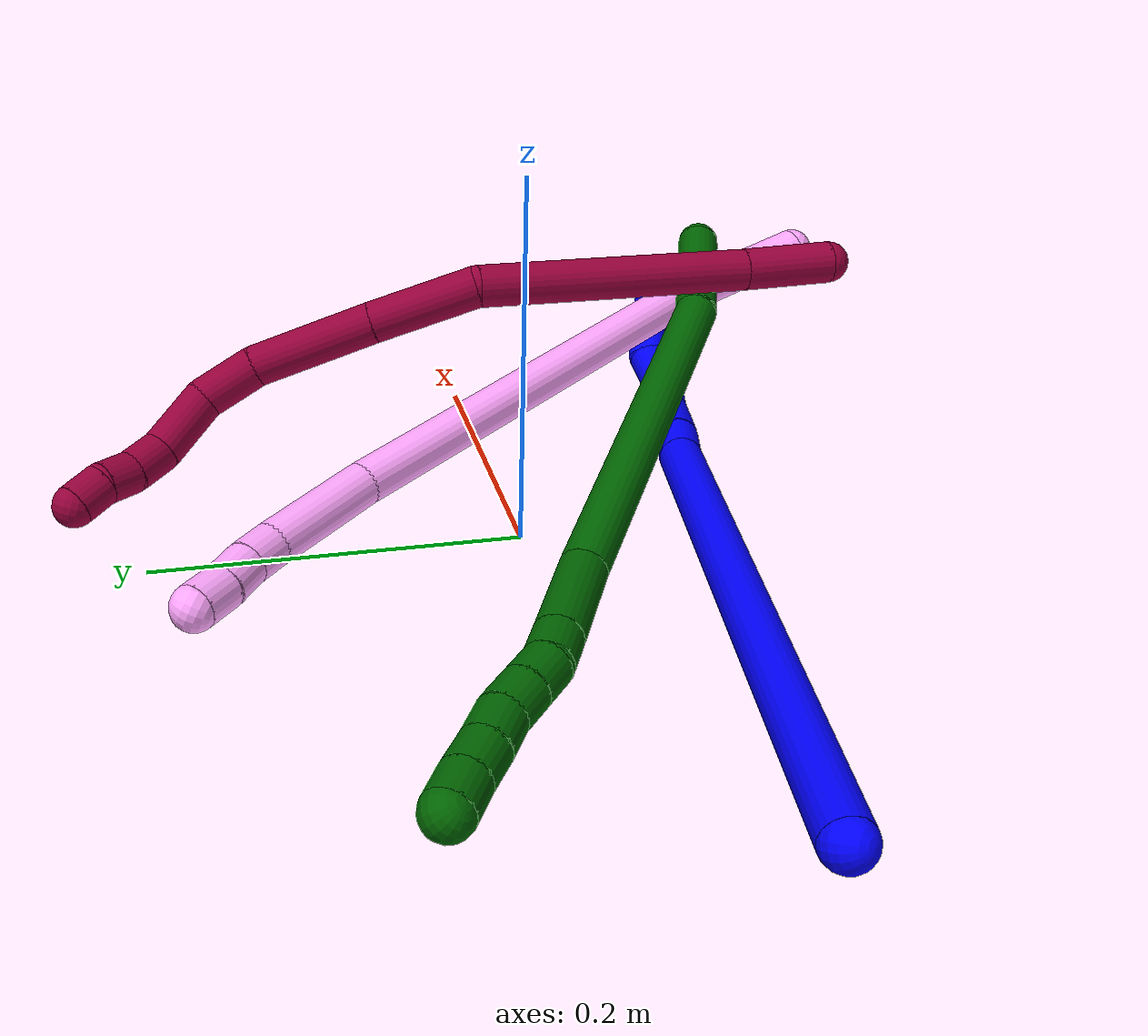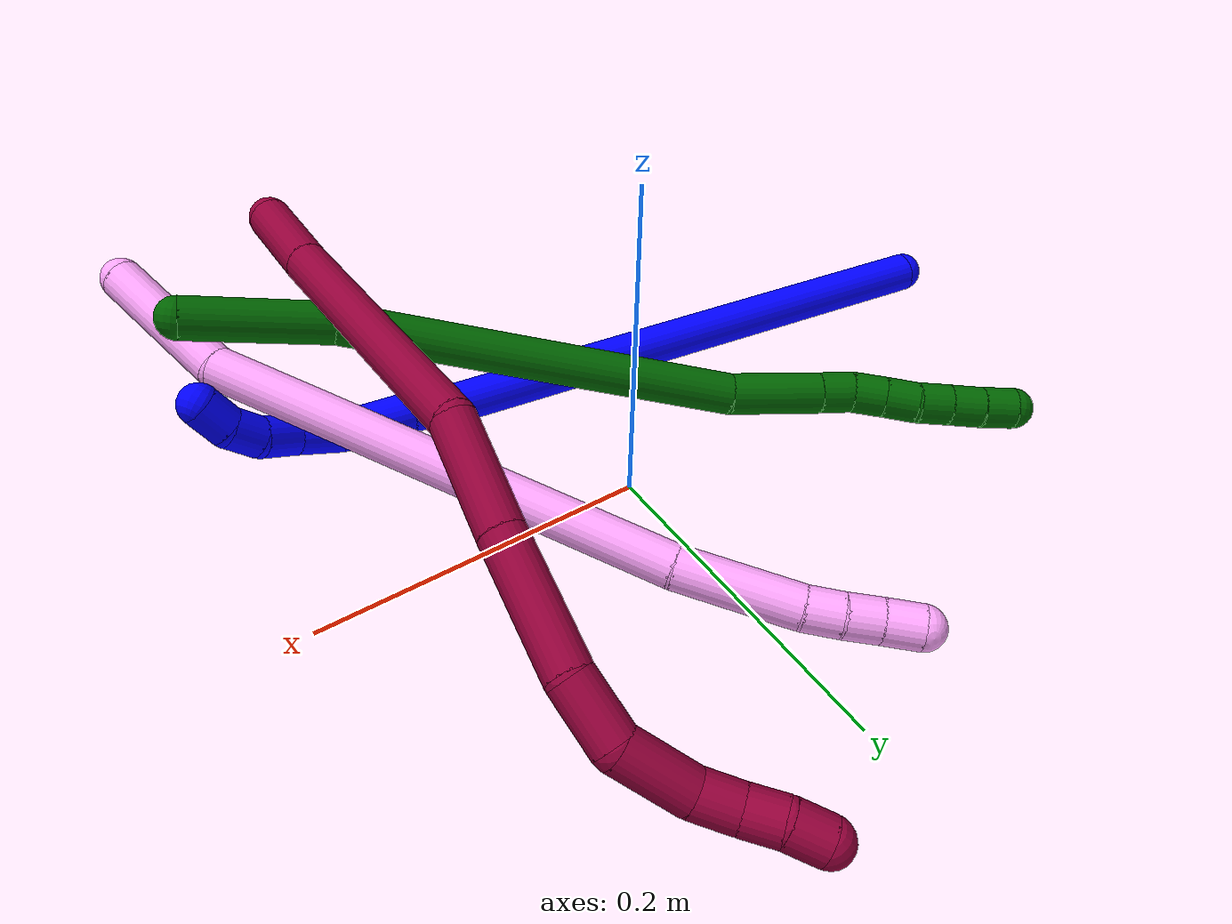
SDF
<sdf version="1.7">
 <world name="default">
  <model name="1">
   <static>0</static>
   <link name="1">
    <collision name="collision-cylinder-e_1_1_4">
     <pose>0.119617 -0.007287 -0.118999 3.08044 0.787053 2.99451</pose>
     <geometry><cylinder><radius>0.0125</radius><length>0.337768</length></cylinder></geometry>
     <surface>
      <friction><ode><mu>1.16</mu><mu2>1.16</mu2><slip1>0</slip1><slip2>0</slip2></ode></friction>
      <contact><ode><kp>1e+06</kp><kd>1</kd><max_vel>0</max_vel><min_depth>0.001</min_depth></ode></contact>
     </surface>
    </collision>
    <visual name="visual-cylinder-e_1_1_4">
     <pose>0.119617 -0.007287 -0.118999 3.08044 0.787053 2.99451</pose>
     <geometry><cylinder><radius>0.0125</radius><length>0.337768</length></cylinder></geometry>
     <material><ambient>0 0 1 1</ambient></material>
    </visual>
    <collision name="collision-cylinder-e_2_4_5">
     <pose>0.248944 -0.015117 -0.245702 3.0712 0.89888 2.99587</pose>
     <geometry><cylinder><radius>0.0125</radius><length>0.024815</length></cylinder></geometry>
     <surface>
      <friction><ode><mu>1.16</mu><mu2>1.16</mu2><slip1>0</slip1><slip2>0</slip2></ode></friction>
      <contact><ode><kp>1e+06</kp><kd>1</kd><max_vel>0</max_vel><min_depth>0.001</min_depth></ode></contact>
     </surface>
    </collision>
    <visual name="visual-cylinder-e_2_4_5">
     <pose>0.248944 -0.015117 -0.245702 3.0712 0.89888 2.99587</pose>
     <geometry><cylinder><radius>0.0125</radius><length>0.024815</length></cylinder></geometry>
     <material><ambient>0 0 1 1</ambient></material>
    </visual>
    <collision name="collision-cylinder-e_3_5_6">
     <pose>0.274275 -0.017603 -0.268377 3.01249 0.802459 2.83919</pose>
     <geometry><cylinder><radius>0.0125</radius><length>0.043447</length></cylinder></geometry>
     <surface>
      <friction><ode><mu>1.16</mu><mu2>1.16</mu2><slip1>0</slip1><slip2>0</slip2></ode></friction>
      <contact><ode><kp>1e+06</kp><kd>1</kd><max_vel>0</max_vel><min_depth>0.001</min_depth></ode></contact>
     </surface>
    </collision>
    <visual name="visual-cylinder-e_3_5_6">
     <pose>0.274275 -0.017603 -0.268377 3.01249 0.802459 2.83919</pose>
     <geometry><cylinder><radius>0.0125</radius><length>0.043447</length></cylinder></geometry>
     <material><ambient>0 0 1 1</ambient></material>
    </visual>
    <collision name="collision-cylinder-e_4_6_7">
     <pose>0.301347 -0.017378 -0.291222 -2.87275 0.951244 -2.62806</pose>
     <geometry><cylinder><radius>0.0125</radius><length>0.02813</length></cylinder></geometry>
     <surface>
      <friction><ode><mu>1.16</mu><mu2>1.16</mu2><slip1>0</slip1><slip2>0</slip2></ode></friction>
      <contact><ode><kp>1e+06</kp><kd>1</kd><max_vel>0</max_vel><min_depth>0.001</min_depth></ode></contact>
     </surface>
    </collision>
    <visual name="visual-cylinder-e_4_6_7">
     <pose>0.301347 -0.017378 -0.291222 -2.87275 0.951244 -2.62806</pose>
     <geometry><cylinder><radius>0.0125</radius><length>0.02813</length></cylinder></geometry>
     <material><ambient>0 0 1 1</ambient></material>
    </visual>
    <collision name="collision-cylinder-e_5_7_8">
     <pose>0.320934 -0.009474 -0.30644 -2.47866 0.717814 -1.65692</pose>
     <geometry><cylinder><radius>0.0125</radius><length>0.024741</length></cylinder></geometry>
     <surface>
      <friction><ode><mu>1.16</mu><mu2>1.16</mu2><slip1>0</slip1><slip2>0</slip2></ode></friction>
      <contact><ode><kp>1e+06</kp><kd>1</kd><max_vel>0</max_vel><min_depth>0.001</min_depth></ode></contact>
     </surface>
    </collision>
    <visual name="visual-cylinder-e_5_7_8">
     <pose>0.320934 -0.009474 -0.30644 -2.47866 0.717814 -1.65692</pose>
     <geometry><cylinder><radius>0.0125</radius><length>0.024741</length></cylinder></geometry>
     <material><ambient>0 0 1 1</ambient></material>
    </visual>
    <collision name="collision-cylinder-e_6_8_9">
     <pose>0.33757 0.001112 -0.316525 -2.08498 0.990472 -1.4934</pose>
     <geometry><cylinder><radius>0.0125</radius><length>0.020326</length></cylinder></geometry>
     <surface>
      <friction><ode><mu>1.16</mu><mu2>1.16</mu2><slip1>0</slip1><slip2>0</slip2></ode></friction>
      <contact><ode><kp>1e+06</kp><kd>1</kd><max_vel>0</max_vel><min_depth>0.001</min_depth></ode></contact>
     </surface>
    </collision>
    <visual name="visual-cylinder-e_6_8_9">
     <pose>0.33757 0.001112 -0.316525 -2.08498 0.990472 -1.4934</pose>
     <geometry><cylinder><radius>0.0125</radius><length>0.020326</length></cylinder></geometry>
     <material><ambient>0 0 1 1</ambient></material>
    </visual>
    <collision name="collision-cylinder-e_7_9_2">
     <pose>0.355215 0.010812 -0.318416 -1.39741 1.07712 -0.930368</pose>
     <geometry><cylinder><radius>0.0125</radius><length>0.020773</length></cylinder></geometry>
     <surface>
      <friction><ode><mu>1.16</mu><mu2>1.16</mu2><slip1>0</slip1><slip2>0</slip2></ode></friction>
      <contact><ode><kp>1e+06</kp><kd>1</kd><max_vel>0</max_vel><min_depth>0.001</min_depth></ode></contact>
     </surface>
    </collision>
    <visual name="visual-cylinder-e_7_9_2">
     <pose>0.355215 0.010812 -0.318416 -1.39741 1.07712 -0.930368</pose>
     <geometry><cylinder><radius>0.0125</radius><length>0.020773</length></cylinder></geometry>
     <material><ambient>0 0 1 1</ambient></material>
    </visual>
    <collision name="collision-sphere-2">
     <pose>0.364361 0.01566 -0.317567 0 -0 0</pose>
     <geometry><sphere><radius>0.0125</radius></sphere></geometry>
     <surface>
      <friction><ode><mu>1.16</mu><mu2>1.16</mu2><slip1>0</slip1><slip2>0</slip2></ode></friction>
      <contact><ode><kp>1e+06</kp><kd>1</kd><max_vel>0</max_vel><min_depth>0.001</min_depth></ode></contact>
     </surface>
    </collision>
    <visual name="visual-sphere-2">
     <pose>0.364361 0.01566 -0.317567 0 -0 0</pose>
     <geometry><sphere><radius>0.0125</radius></sphere></geometry>
     <material><ambient>0 0 1 1</ambient></material>
    </visual>
    <collision name="collision-sphere-9">
     <pose>0.346069 0.005964 -0.319265 0 -0 0</pose>
     <geometry><sphere><radius>0.0125</radius></sphere></geometry>
     <surface>
      <friction><ode><mu>1.16</mu><mu2>1.16</mu2><slip1>0</slip1><slip2>0</slip2></ode></friction>
      <contact><ode><kp>1e+06</kp><kd>1</kd><max_vel>0</max_vel><min_depth>0.001</min_depth></ode></contact>
     </surface>
    </collision>
    <visual name="visual-sphere-9">
     <pose>0.346069 0.005964 -0.319265 0 -0 0</pose>
     <geometry><sphere><radius>0.0125</radius></sphere></geometry>
     <material><ambient>0 0 1 1</ambient></material>
    </visual>
    <collision name="collision-sphere-4">
     <pose>0.239233 -0.014573 -0.237997 0 -0 0</pose>
     <geometry><sphere><radius>0.0125</radius></sphere></geometry>
     <surface>
      <friction><ode><mu>1.16</mu><mu2>1.16</mu2><slip1>0</slip1><slip2>0</slip2></ode></friction>
      <contact><ode><kp>1e+06</kp><kd>1</kd><max_vel>0</max_vel><min_depth>0.001</min_depth></ode></contact>
     </surface>
    </collision>
    <visual name="visual-sphere-4">
     <pose>0.239233 -0.014573 -0.237997 0 -0 0</pose>
     <geometry><sphere><radius>0.0125</radius></sphere></geometry>
     <material><ambient>0 0 1 1</ambient></material>
    </visual>
    <collision name="collision-sphere-1">
     <geometry><sphere><radius>0.0125</radius></sphere></geometry>
     <surface>
      <friction><ode><mu>1.16</mu><mu2>1.16</mu2><slip1>0</slip1><slip2>0</slip2></ode></friction>
      <contact><ode><kp>1e+06</kp><kd>1</kd><max_vel>0</max_vel><min_depth>0.001</min_depth></ode></contact>
     </surface>
    </collision>
    <visual name="visual-sphere-1">
     <geometry><sphere><radius>0.0125</radius></sphere></geometry>
     <material><ambient>0 0 1 1</ambient></material>
    </visual>
    <collision name="collision-sphere-8">
     <pose>0.329071 -0.003739 -0.313784 0 -0 0</pose>
     <geometry><sphere><radius>0.0125</radius></sphere></geometry>
     <surface>
      <friction><ode><mu>1.16</mu><mu2>1.16</mu2><slip1>0</slip1><slip2>0</slip2></ode></friction>
      <contact><ode><kp>1e+06</kp><kd>1</kd><max_vel>0</max_vel><min_depth>0.001</min_depth></ode></contact>
     </surface>
    </collision>
    <visual name="visual-sphere-8">
     <pose>0.329071 -0.003739 -0.313784 0 -0 0</pose>
     <geometry><sphere><radius>0.0125</radius></sphere></geometry>
     <material><ambient>0 0 1 1</ambient></material>
    </visual>
    <collision name="collision-sphere-5">
     <pose>0.258654 -0.01566 -0.253406 0 -0 0</pose>
     <geometry><sphere><radius>0.0125</radius></sphere></geometry>
     <surface>
      <friction><ode><mu>1.16</mu><mu2>1.16</mu2><slip1>0</slip1><slip2>0</slip2></ode></friction>
      <contact><ode><kp>1e+06</kp><kd>1</kd><max_vel>0</max_vel><min_depth>0.001</min_depth></ode></contact>
     </surface>
    </collision>
    <visual name="visual-sphere-5">
     <pose>0.258654 -0.01566 -0.253406 0 -0 0</pose>
     <geometry><sphere><radius>0.0125</radius></sphere></geometry>
     <material><ambient>0 0 1 1</ambient></material>
    </visual>
    <collision name="collision-sphere-6">
     <pose>0.289896 -0.019547 -0.283348 0 -0 0</pose>
     <geometry><sphere><radius>0.0125</radius></sphere></geometry>
     <surface>
      <friction><ode><mu>1.16</mu><mu2>1.16</mu2><slip1>0</slip1><slip2>0</slip2></ode></friction>
      <contact><ode><kp>1e+06</kp><kd>1</kd><max_vel>0</max_vel><min_depth>0.001</min_depth></ode></contact>
     </surface>
    </collision>
    <visual name="visual-sphere-6">
     <pose>0.289896 -0.019547 -0.283348 0 -0 0</pose>
     <geometry><sphere><radius>0.0125</radius></sphere></geometry>
     <material><ambient>0 0 1 1</ambient></material>
    </visual>
    <collision name="collision-sphere-7">
     <pose>0.312797 -0.015208 -0.299095 0 -0 0</pose>
     <geometry><sphere><radius>0.0125</radius></sphere></geometry>
     <surface>
      <friction><ode><mu>1.16</mu><mu2>1.16</mu2><slip1>0</slip1><slip2>0</slip2></ode></friction>
      <contact><ode><kp>1e+06</kp><kd>1</kd><max_vel>0</max_vel><min_depth>0.001</min_depth></ode></contact>
     </surface>
    </collision>
    <visual name="visual-sphere-7">
     <pose>0.312797 -0.015208 -0.299095 0 -0 0</pose>
     <geometry><sphere><radius>0.0125</radius></sphere></geometry>
     <material><ambient>0 0 1 1</ambient></material>
    </visual>
    <inertial>
     <pose>0.178308 -0.008154 -0.173546 0 -0 0</pose>
     <mass>0.5</mass>
     <inertia>
      <ixx>-0.0019</ixx>
      <ixy>0</ixy>
      <ixz>0</ixz>
      <iyy>0.003554</iyy>
      <iyz>0</iyz>
      <izz>-0.002186</izz>
     </inertia>
    </inertial>
   </link>
   <pose>-0.276237 -0.062437 0.013307 1.13841 -0.434693 -0.812801</pose>
  </model>
  <model name="4">
   <static>0</static>
   <link name="4">
    <collision name="collision-cylinder-e_1_1_4">
     <pose>-0.022975 0.025152 -0.027713 -2.40461 -0.550573 1.26313</pose>
     <geometry><cylinder><radius>0.0125</radius><length>0.087829</length></cylinder></geometry>
     <surface>
      <friction><ode><mu>1.16</mu><mu2>1.16</mu2><slip1>0</slip1><slip2>0</slip2></ode></friction>
      <contact><ode><kp>1e+06</kp><kd>1</kd><max_vel>0</max_vel><min_depth>0.001</min_depth></ode></contact>
     </surface>
    </collision>
    <visual name="visual-cylinder-e_1_1_4">
     <pose>-0.022975 0.025152 -0.027713 -2.40461 -0.550573 1.26313</pose>
     <geometry><cylinder><radius>0.0125</radius><length>0.087829</length></cylinder></geometry>
     <material><ambient>1 0.65098 0.996078 1</ambient></material>
    </visual>
    <collision name="collision-cylinder-e_2_4_5">
     <pose>-0.096768 0.162897 -0.123077 -2.11184 -0.369143 0.637459</pose>
     <geometry><cylinder><radius>0.0125</radius><length>0.281683</length></cylinder></geometry>
     <surface>
      <friction><ode><mu>1.16</mu><mu2>1.16</mu2><slip1>0</slip1><slip2>0</slip2></ode></friction>
      <contact><ode><kp>1e+06</kp><kd>1</kd><max_vel>0</max_vel><min_depth>0.001</min_depth></ode></contact>
     </surface>
    </collision>
    <visual name="visual-cylinder-e_2_4_5">
     <pose>-0.096768 0.162897 -0.123077 -2.11184 -0.369143 0.637459</pose>
     <geometry><cylinder><radius>0.0125</radius><length>0.281683</length></cylinder></geometry>
     <material><ambient>1 0.65098 0.996078 1</ambient></material>
    </visual>
    <collision name="collision-cylinder-e_3_5_6">
     <pose>-0.157984 0.30517 -0.20462 -2.00856 -0.307262 0.477613</pose>
     <geometry><cylinder><radius>0.0125</radius><length>0.06876</length></cylinder></geometry>
     <surface>
      <friction><ode><mu>1.16</mu><mu2>1.16</mu2><slip1>0</slip1><slip2>0</slip2></ode></friction>
      <contact><ode><kp>1e+06</kp><kd>1</kd><max_vel>0</max_vel><min_depth>0.001</min_depth></ode></contact>
     </surface>
    </collision>
    <visual name="visual-cylinder-e_3_5_6">
     <pose>-0.157984 0.30517 -0.20462 -2.00856 -0.307262 0.477613</pose>
     <geometry><cylinder><radius>0.0125</radius><length>0.06876</length></cylinder></geometry>
     <material><ambient>1 0.65098 0.996078 1</ambient></material>
    </visual>
    <collision name="collision-cylinder-e_4_6_7">
     <pose>-0.170565 0.344238 -0.221869 -1.91427 -0.215483 0.304729</pose>
     <geometry><cylinder><radius>0.0125</radius><length>0.020413</length></cylinder></geometry>
     <surface>
      <friction><ode><mu>1.16</mu><mu2>1.16</mu2><slip1>0</slip1><slip2>0</slip2></ode></friction>
      <contact><ode><kp>1e+06</kp><kd>1</kd><max_vel>0</max_vel><min_depth>0.001</min_depth></ode></contact>
     </surface>
    </collision>
    <visual name="visual-cylinder-e_4_6_7">
     <pose>-0.170565 0.344238 -0.221869 -1.91427 -0.215483 0.304729</pose>
     <geometry><cylinder><radius>0.0125</radius><length>0.020413</length></cylinder></geometry>
     <material><ambient>1 0.65098 0.996078 1</ambient></material>
    </visual>
    <collision name="collision-cylinder-e_5_7_8">
     <pose>-0.174953 0.363149 -0.227424 -1.7976 -0.221975 0.278374</pose>
     <geometry><cylinder><radius>0.0125</radius><length>0.020038</length></cylinder></geometry>
     <surface>
      <friction><ode><mu>1.16</mu><mu2>1.16</mu2><slip1>0</slip1><slip2>0</slip2></ode></friction>
      <contact><ode><kp>1e+06</kp><kd>1</kd><max_vel>0</max_vel><min_depth>0.001</min_depth></ode></contact>
     </surface>
    </collision>
    <visual name="visual-cylinder-e_5_7_8">
     <pose>-0.174953 0.363149 -0.227424 -1.7976 -0.221975 0.278374</pose>
     <geometry><cylinder><radius>0.0125</radius><length>0.020038</length></cylinder></geometry>
     <material><ambient>1 0.65098 0.996078 1</ambient></material>
    </visual>
    <collision name="collision-cylinder-e_6_8_2">
     <pose>-0.179144 0.382531 -0.23309 -1.90904 -0.187709 0.264244</pose>
     <geometry><cylinder><radius>0.0125</radius><length>0.021277</length></cylinder></geometry>
     <surface>
      <friction><ode><mu>1.16</mu><mu2>1.16</mu2><slip1>0</slip1><slip2>0</slip2></ode></friction>
      <contact><ode><kp>1e+06</kp><kd>1</kd><max_vel>0</max_vel><min_depth>0.001</min_depth></ode></contact>
     </surface>
    </collision>
    <visual name="visual-cylinder-e_6_8_2">
     <pose>-0.179144 0.382531 -0.23309 -1.90904 -0.187709 0.264244</pose>
     <geometry><cylinder><radius>0.0125</radius><length>0.021277</length></cylinder></geometry>
     <material><ambient>1 0.65098 0.996078 1</ambient></material>
    </visual>
    <collision name="collision-sphere-2">
     <pose>-0.181129 0.39239 -0.236558 0 -0 0</pose>
     <geometry><sphere><radius>0.0125</radius></sphere></geometry>
     <surface>
      <friction><ode><mu>1.16</mu><mu2>1.16</mu2><slip1>0</slip1><slip2>0</slip2></ode></friction>
      <contact><ode><kp>1e+06</kp><kd>1</kd><max_vel>0</max_vel><min_depth>0.001</min_depth></ode></contact>
     </surface>
    </collision>
    <visual name="visual-sphere-2">
     <pose>-0.181129 0.39239 -0.236558 0 -0 0</pose>
     <geometry><sphere><radius>0.0125</radius></sphere></geometry>
     <material><ambient>1 0.65098 0.996078 1</ambient></material>
    </visual>
    <collision name="collision-sphere-4">
     <pose>-0.04595 0.050303 -0.055426 0 -0 0</pose>
     <geometry><sphere><radius>0.0125</radius></sphere></geometry>
     <surface>
      <friction><ode><mu>1.16</mu><mu2>1.16</mu2><slip1>0</slip1><slip2>0</slip2></ode></friction>
      <contact><ode><kp>1e+06</kp><kd>1</kd><max_vel>0</max_vel><min_depth>0.001</min_depth></ode></contact>
     </surface>
    </collision>
    <visual name="visual-sphere-4">
     <pose>-0.04595 0.050303 -0.055426 0 -0 0</pose>
     <geometry><sphere><radius>0.0125</radius></sphere></geometry>
     <material><ambient>1 0.65098 0.996078 1</ambient></material>
    </visual>
    <collision name="collision-sphere-1">
     <geometry><sphere><radius>0.0125</radius></sphere></geometry>
     <surface>
      <friction><ode><mu>1.16</mu><mu2>1.16</mu2><slip1>0</slip1><slip2>0</slip2></ode></friction>
      <contact><ode><kp>1e+06</kp><kd>1</kd><max_vel>0</max_vel><min_depth>0.001</min_depth></ode></contact>
     </surface>
    </collision>
    <visual name="visual-sphere-1">
     <geometry><sphere><radius>0.0125</radius></sphere></geometry>
     <material><ambient>1 0.65098 0.996078 1</ambient></material>
    </visual>
    <collision name="collision-sphere-8">
     <pose>-0.177159 0.372671 -0.229622 0 -0 0</pose>
     <geometry><sphere><radius>0.0125</radius></sphere></geometry>
     <surface>
      <friction><ode><mu>1.16</mu><mu2>1.16</mu2><slip1>0</slip1><slip2>0</slip2></ode></friction>
      <contact><ode><kp>1e+06</kp><kd>1</kd><max_vel>0</max_vel><min_depth>0.001</min_depth></ode></contact>
     </surface>
    </collision>
    <visual name="visual-sphere-8">
     <pose>-0.177159 0.372671 -0.229622 0 -0 0</pose>
     <geometry><sphere><radius>0.0125</radius></sphere></geometry>
     <material><ambient>1 0.65098 0.996078 1</ambient></material>
    </visual>
    <collision name="collision-sphere-5">
     <pose>-0.147586 0.27549 -0.190728 0 -0 0</pose>
     <geometry><sphere><radius>0.0125</radius></sphere></geometry>
     <surface>
      <friction><ode><mu>1.16</mu><mu2>1.16</mu2><slip1>0</slip1><slip2>0</slip2></ode></friction>
      <contact><ode><kp>1e+06</kp><kd>1</kd><max_vel>0</max_vel><min_depth>0.001</min_depth></ode></contact>
     </surface>
    </collision>
    <visual name="visual-sphere-5">
     <pose>-0.147586 0.27549 -0.190728 0 -0 0</pose>
     <geometry><sphere><radius>0.0125</radius></sphere></geometry>
     <material><ambient>1 0.65098 0.996078 1</ambient></material>
    </visual>
    <collision name="collision-sphere-6">
     <pose>-0.168383 0.33485 -0.218511 0 -0 0</pose>
     <geometry><sphere><radius>0.0125</radius></sphere></geometry>
     <surface>
      <friction><ode><mu>1.16</mu><mu2>1.16</mu2><slip1>0</slip1><slip2>0</slip2></ode></friction>
      <contact><ode><kp>1e+06</kp><kd>1</kd><max_vel>0</max_vel><min_depth>0.001</min_depth></ode></contact>
     </surface>
    </collision>
    <visual name="visual-sphere-6">
     <pose>-0.168383 0.33485 -0.218511 0 -0 0</pose>
     <geometry><sphere><radius>0.0125</radius></sphere></geometry>
     <material><ambient>1 0.65098 0.996078 1</ambient></material>
    </visual>
    <collision name="collision-sphere-7">
     <pose>-0.172747 0.353626 -0.225227 0 -0 0</pose>
     <geometry><sphere><radius>0.0125</radius></sphere></geometry>
     <surface>
      <friction><ode><mu>1.16</mu><mu2>1.16</mu2><slip1>0</slip1><slip2>0</slip2></ode></friction>
      <contact><ode><kp>1e+06</kp><kd>1</kd><max_vel>0</max_vel><min_depth>0.001</min_depth></ode></contact>
     </surface>
    </collision>
    <visual name="visual-sphere-7">
     <pose>-0.172747 0.353626 -0.225227 0 -0 0</pose>
     <geometry><sphere><radius>0.0125</radius></sphere></geometry>
     <material><ambient>1 0.65098 0.996078 1</ambient></material>
    </visual>
    <inertial>
     <pose>-0.101876 0.183041 -0.130436 0 -0 0</pose>
     <mass>0.5</mass>
     <inertia>
      <ixx>0.002538</ixx>
      <ixy>0</ixy>
      <ixz>0</ixz>
      <iyy>0.000701</iyy>
      <iyz>0</iyz>
      <izz>-0.000863</izz>
     </inertia>
    </inertial>
   </link>
   <pose>0.204373 -0.233102 0.088555 -3.12497 -1.16654 -1.94787</pose>
  </model>
  <model name="6">
   <static>0</static>
   <link name="6">
    <collision name="collision-cylinder-e_1_1_4">
     <pose>-0.03994 0.015176 0.00584 -1.20342 -1.18416 0.865287</pose>
     <geometry><cylinder><radius>0.0125</radius><length>0.086246</length></cylinder></geometry>
     <surface>
      <friction><ode><mu>1.16</mu><mu2>1.16</mu2><slip1>0</slip1><slip2>0</slip2></ode></friction>
      <contact><ode><kp>1e+06</kp><kd>1</kd><max_vel>0</max_vel><min_depth>0.001</min_depth></ode></contact>
     </surface>
    </collision>
    <visual name="visual-cylinder-e_1_1_4">
     <pose>-0.03994 0.015176 0.00584 -1.20342 -1.18416 0.865287</pose>
     <geometry><cylinder><radius>0.0125</radius><length>0.086246</length></cylinder></geometry>
     <material><ambient>0 0.392157 0.003922 1</ambient></material>
    </visual>
    <collision name="collision-cylinder-e_2_4_5">
     <pose>-0.18286 0.088893 0.009388 -1.60994 -1.05355 1.0879</pose>
     <geometry><cylinder><radius>0.0125</radius><length>0.23696</length></cylinder></geometry>
     <surface>
      <friction><ode><mu>1.16</mu><mu2>1.16</mu2><slip1>0</slip1><slip2>0</slip2></ode></friction>
      <contact><ode><kp>1e+06</kp><kd>1</kd><max_vel>0</max_vel><min_depth>0.001</min_depth></ode></contact>
     </surface>
    </collision>
    <visual name="visual-cylinder-e_2_4_5">
     <pose>-0.18286 0.088893 0.009388 -1.60994 -1.05355 1.0879</pose>
     <geometry><cylinder><radius>0.0125</radius><length>0.23696</length></cylinder></geometry>
     <material><ambient>0 0.392157 0.003922 1</ambient></material>
    </visual>
    <collision name="collision-cylinder-e_3_5_6">
     <pose>-0.309278 0.161954 0.01164 -1.2674 -0.995041 0.759387</pose>
     <geometry><cylinder><radius>0.0125</radius><length>0.055884</length></cylinder></geometry>
     <surface>
      <friction><ode><mu>1.16</mu><mu2>1.16</mu2><slip1>0</slip1><slip2>0</slip2></ode></friction>
      <contact><ode><kp>1e+06</kp><kd>1</kd><max_vel>0</max_vel><min_depth>0.001</min_depth></ode></contact>
     </surface>
    </collision>
    <visual name="visual-cylinder-e_3_5_6">
     <pose>-0.309278 0.161954 0.01164 -1.2674 -0.995041 0.759387</pose>
     <geometry><cylinder><radius>0.0125</radius><length>0.055884</length></cylinder></geometry>
     <material><ambient>0 0.392157 0.003922 1</ambient></material>
    </visual>
    <collision name="collision-cylinder-e_4_6_7">
     <pose>-0.341301 0.182003 0.018064 -1.24347 -0.973446 0.724859</pose>
     <geometry><cylinder><radius>0.0125</radius><length>0.020768</length></cylinder></geometry>
     <surface>
      <friction><ode><mu>1.16</mu><mu2>1.16</mu2><slip1>0</slip1><slip2>0</slip2></ode></friction>
      <contact><ode><kp>1e+06</kp><kd>1</kd><max_vel>0</max_vel><min_depth>0.001</min_depth></ode></contact>
     </surface>
    </collision>
    <visual name="visual-cylinder-e_4_6_7">
     <pose>-0.341301 0.182003 0.018064 -1.24347 -0.973446 0.724859</pose>
     <geometry><cylinder><radius>0.0125</radius><length>0.020768</length></cylinder></geometry>
     <material><ambient>0 0.392157 0.003922 1</ambient></material>
    </visual>
    <collision name="collision-cylinder-e_5_7_8">
     <pose>-0.357128 0.194433 0.019831 -1.58673 -0.809505 0.821101</pose>
     <geometry><cylinder><radius>0.0125</radius><length>0.020003</length></cylinder></geometry>
     <surface>
      <friction><ode><mu>1.16</mu><mu2>1.16</mu2><slip1>0</slip1><slip2>0</slip2></ode></friction>
      <contact><ode><kp>1e+06</kp><kd>1</kd><max_vel>0</max_vel><min_depth>0.001</min_depth></ode></contact>
     </surface>
    </collision>
    <visual name="visual-cylinder-e_5_7_8">
     <pose>-0.357128 0.194433 0.019831 -1.58673 -0.809505 0.821101</pose>
     <geometry><cylinder><radius>0.0125</radius><length>0.020003</length></cylinder></geometry>
     <material><ambient>0 0.392157 0.003922 1</ambient></material>
    </visual>
    <collision name="collision-cylinder-e_6_8_9">
     <pose>-0.371648 0.208224 0.019427 -1.61352 -0.812286 0.843764</pose>
     <geometry><cylinder><radius>0.0125</radius><length>0.020059</length></cylinder></geometry>
     <surface>
      <friction><ode><mu>1.16</mu><mu2>1.16</mu2><slip1>0</slip1><slip2>0</slip2></ode></friction>
      <contact><ode><kp>1e+06</kp><kd>1</kd><max_vel>0</max_vel><min_depth>0.001</min_depth></ode></contact>
     </surface>
    </collision>
    <visual name="visual-cylinder-e_6_8_9">
     <pose>-0.371648 0.208224 0.019427 -1.61352 -0.812286 0.843764</pose>
     <geometry><cylinder><radius>0.0125</radius><length>0.020059</length></cylinder></geometry>
     <material><ambient>0 0.392157 0.003922 1</ambient></material>
    </visual>
    <collision name="collision-cylinder-e_7_9_10">
     <pose>-0.387135 0.220837 0.019973 -1.42484 -0.956975 0.842402</pose>
     <geometry><cylinder><radius>0.0125</radius><length>0.020078</length></cylinder></geometry>
     <surface>
      <friction><ode><mu>1.16</mu><mu2>1.16</mu2><slip1>0</slip1><slip2>0</slip2></ode></friction>
      <contact><ode><kp>1e+06</kp><kd>1</kd><max_vel>0</max_vel><min_depth>0.001</min_depth></ode></contact>
     </surface>
    </collision>
    <visual name="visual-cylinder-e_7_9_10">
     <pose>-0.387135 0.220837 0.019973 -1.42484 -0.956975 0.842402</pose>
     <geometry><cylinder><radius>0.0125</radius><length>0.020078</length></cylinder></geometry>
     <material><ambient>0 0.392157 0.003922 1</ambient></material>
    </visual>
    <collision name="collision-cylinder-e_8_10_11">
     <pose>-0.403228 0.232667 0.021519 -1.45599 -0.908551 0.821066</pose>
     <geometry><cylinder><radius>0.0125</radius><length>0.020001</length></cylinder></geometry>
     <surface>
      <friction><ode><mu>1.16</mu><mu2>1.16</mu2><slip1>0</slip1><slip2>0</slip2></ode></friction>
      <contact><ode><kp>1e+06</kp><kd>1</kd><max_vel>0</max_vel><min_depth>0.001</min_depth></ode></contact>
     </surface>
    </collision>
    <visual name="visual-cylinder-e_8_10_11">
     <pose>-0.403228 0.232667 0.021519 -1.45599 -0.908551 0.821066</pose>
     <geometry><cylinder><radius>0.0125</radius><length>0.020001</length></cylinder></geometry>
     <material><ambient>0 0.392157 0.003922 1</ambient></material>
    </visual>
    <collision name="collision-cylinder-e_9_11_2">
     <pose>-0.419186 0.24455 0.023455 -1.36052 -0.939261 0.779244</pose>
     <geometry><cylinder><radius>0.0125</radius><length>0.020001</length></cylinder></geometry>
     <surface>
      <friction><ode><mu>1.16</mu><mu2>1.16</mu2><slip1>0</slip1><slip2>0</slip2></ode></friction>
      <contact><ode><kp>1e+06</kp><kd>1</kd><max_vel>0</max_vel><min_depth>0.001</min_depth></ode></contact>
     </surface>
    </collision>
    <visual name="visual-cylinder-e_9_11_2">
     <pose>-0.419186 0.24455 0.023455 -1.36052 -0.939261 0.779244</pose>
     <geometry><cylinder><radius>0.0125</radius><length>0.020001</length></cylinder></geometry>
     <material><ambient>0 0.392157 0.003922 1</ambient></material>
    </visual>
    <collision name="collision-sphere-2">
     <pose>-0.427258 0.250324 0.024688 0 -0 0</pose>
     <geometry><sphere><radius>0.0125</radius></sphere></geometry>
     <surface>
      <friction><ode><mu>1.16</mu><mu2>1.16</mu2><slip1>0</slip1><slip2>0</slip2></ode></friction>
      <contact><ode><kp>1e+06</kp><kd>1</kd><max_vel>0</max_vel><min_depth>0.001</min_depth></ode></contact>
     </surface>
    </collision>
    <visual name="visual-sphere-2">
     <pose>-0.427258 0.250324 0.024688 0 -0 0</pose>
     <geometry><sphere><radius>0.0125</radius></sphere></geometry>
     <material><ambient>0 0.392157 0.003922 1</ambient></material>
    </visual>
    <collision name="collision-sphere-11">
     <pose>-0.411114 0.238775 0.022223 0 -0 0</pose>
     <geometry><sphere><radius>0.0125</radius></sphere></geometry>
     <surface>
      <friction><ode><mu>1.16</mu><mu2>1.16</mu2><slip1>0</slip1><slip2>0</slip2></ode></friction>
      <contact><ode><kp>1e+06</kp><kd>1</kd><max_vel>0</max_vel><min_depth>0.001</min_depth></ode></contact>
     </surface>
    </collision>
    <visual name="visual-sphere-11">
     <pose>-0.411114 0.238775 0.022223 0 -0 0</pose>
     <geometry><sphere><radius>0.0125</radius></sphere></geometry>
     <material><ambient>0 0.392157 0.003922 1</ambient></material>
    </visual>
    <collision name="collision-sphere-10">
     <pose>-0.395341 0.226558 0.020814 0 -0 0</pose>
     <geometry><sphere><radius>0.0125</radius></sphere></geometry>
     <surface>
      <friction><ode><mu>1.16</mu><mu2>1.16</mu2><slip1>0</slip1><slip2>0</slip2></ode></friction>
      <contact><ode><kp>1e+06</kp><kd>1</kd><max_vel>0</max_vel><min_depth>0.001</min_depth></ode></contact>
     </surface>
    </collision>
    <visual name="visual-sphere-10">
     <pose>-0.395341 0.226558 0.020814 0 -0 0</pose>
     <geometry><sphere><radius>0.0125</radius></sphere></geometry>
     <material><ambient>0 0.392157 0.003922 1</ambient></material>
    </visual>
    <collision name="collision-sphere-9">
     <pose>-0.378929 0.215116 0.019132 0 -0 0</pose>
     <geometry><sphere><radius>0.0125</radius></sphere></geometry>
     <surface>
      <friction><ode><mu>1.16</mu><mu2>1.16</mu2><slip1>0</slip1><slip2>0</slip2></ode></friction>
      <contact><ode><kp>1e+06</kp><kd>1</kd><max_vel>0</max_vel><min_depth>0.001</min_depth></ode></contact>
     </surface>
    </collision>
    <visual name="visual-sphere-9">
     <pose>-0.378929 0.215116 0.019132 0 -0 0</pose>
     <geometry><sphere><radius>0.0125</radius></sphere></geometry>
     <material><ambient>0 0.392157 0.003922 1</ambient></material>
    </visual>
    <collision name="collision-sphere-4">
     <pose>-0.07988 0.030351 0.01168 0 -0 0</pose>
     <geometry><sphere><radius>0.0125</radius></sphere></geometry>
     <surface>
      <friction><ode><mu>1.16</mu><mu2>1.16</mu2><slip1>0</slip1><slip2>0</slip2></ode></friction>
      <contact><ode><kp>1e+06</kp><kd>1</kd><max_vel>0</max_vel><min_depth>0.001</min_depth></ode></contact>
     </surface>
    </collision>
    <visual name="visual-sphere-4">
     <pose>-0.07988 0.030351 0.01168 0 -0 0</pose>
     <geometry><sphere><radius>0.0125</radius></sphere></geometry>
     <material><ambient>0 0.392157 0.003922 1</ambient></material>
    </visual>
    <collision name="collision-sphere-1">
     <geometry><sphere><radius>0.0125</radius></sphere></geometry>
     <surface>
      <friction><ode><mu>1.16</mu><mu2>1.16</mu2><slip1>0</slip1><slip2>0</slip2></ode></friction>
      <contact><ode><kp>1e+06</kp><kd>1</kd><max_vel>0</max_vel><min_depth>0.001</min_depth></ode></contact>
     </surface>
    </collision>
    <visual name="visual-sphere-1">
     <geometry><sphere><radius>0.0125</radius></sphere></geometry>
     <material><ambient>0 0.392157 0.003922 1</ambient></material>
    </visual>
    <collision name="collision-sphere-8">
     <pose>-0.364368 0.201331 0.019721 0 -0 0</pose>
     <geometry><sphere><radius>0.0125</radius></sphere></geometry>
     <surface>
      <friction><ode><mu>1.16</mu><mu2>1.16</mu2><slip1>0</slip1><slip2>0</slip2></ode></friction>
      <contact><ode><kp>1e+06</kp><kd>1</kd><max_vel>0</max_vel><min_depth>0.001</min_depth></ode></contact>
     </surface>
    </collision>
    <visual name="visual-sphere-8">
     <pose>-0.364368 0.201331 0.019721 0 -0 0</pose>
     <geometry><sphere><radius>0.0125</radius></sphere></geometry>
     <material><ambient>0 0.392157 0.003922 1</ambient></material>
    </visual>
    <collision name="collision-sphere-5">
     <pose>-0.285841 0.147436 0.007095 0 -0 0</pose>
     <geometry><sphere><radius>0.0125</radius></sphere></geometry>
     <surface>
      <friction><ode><mu>1.16</mu><mu2>1.16</mu2><slip1>0</slip1><slip2>0</slip2></ode></friction>
      <contact><ode><kp>1e+06</kp><kd>1</kd><max_vel>0</max_vel><min_depth>0.001</min_depth></ode></contact>
     </surface>
    </collision>
    <visual name="visual-sphere-5">
     <pose>-0.285841 0.147436 0.007095 0 -0 0</pose>
     <geometry><sphere><radius>0.0125</radius></sphere></geometry>
     <material><ambient>0 0.392157 0.003922 1</ambient></material>
    </visual>
    <collision name="collision-sphere-6">
     <pose>-0.332716 0.176473 0.016186 0 -0 0</pose>
     <geometry><sphere><radius>0.0125</radius></sphere></geometry>
     <surface>
      <friction><ode><mu>1.16</mu><mu2>1.16</mu2><slip1>0</slip1><slip2>0</slip2></ode></friction>
      <contact><ode><kp>1e+06</kp><kd>1</kd><max_vel>0</max_vel><min_depth>0.001</min_depth></ode></contact>
     </surface>
    </collision>
    <visual name="visual-sphere-6">
     <pose>-0.332716 0.176473 0.016186 0 -0 0</pose>
     <geometry><sphere><radius>0.0125</radius></sphere></geometry>
     <material><ambient>0 0.392157 0.003922 1</ambient></material>
    </visual>
    <collision name="collision-sphere-7">
     <pose>-0.349887 0.187534 0.019941 0 -0 0</pose>
     <geometry><sphere><radius>0.0125</radius></sphere></geometry>
     <surface>
      <friction><ode><mu>1.16</mu><mu2>1.16</mu2><slip1>0</slip1><slip2>0</slip2></ode></friction>
      <contact><ode><kp>1e+06</kp><kd>1</kd><max_vel>0</max_vel><min_depth>0.001</min_depth></ode></contact>
     </surface>
    </collision>
    <visual name="visual-sphere-7">
     <pose>-0.349887 0.187534 0.019941 0 -0 0</pose>
     <geometry><sphere><radius>0.0125</radius></sphere></geometry>
     <material><ambient>0 0.392157 0.003922 1</ambient></material>
    </visual>
    <inertial>
     <pose>-0.219935 0.114497 0.011682 0 -0 0</pose>
     <mass>0.5</mass>
     <inertia>
      <ixx>0.000764</ixx>
      <ixy>0</ixy>
      <ixz>0</ixz>
      <iyy>0.001445</iyy>
      <iyz>0</iyz>
      <izz>0.000461</izz>
     </inertia>
    </inertial>
   </link>
   <pose>0.193132 -0.161964 0.099856 0.5447 -0.533787 -0.096969</pose>
  </model>
  <model name="8">
   <static>0</static>
   <link name="8">
    <collision name="collision-cylinder-e_1_1_4">
     <pose>0.002314 0.025311 0.009394 -1.21541 0.085498 -0.059484</pose>
     <geometry><cylinder><radius>0.0125</radius><length>0.054194</length></cylinder></geometry>
     <surface>
      <friction><ode><mu>1.16</mu><mu2>1.16</mu2><slip1>0</slip1><slip2>0</slip2></ode></friction>
      <contact><ode><kp>1e+06</kp><kd>1</kd><max_vel>0</max_vel><min_depth>0.001</min_depth></ode></contact>
     </surface>
    </collision>
    <visual name="visual-cylinder-e_1_1_4">
     <pose>0.002314 0.025311 0.009394 -1.21541 0.085498 -0.059484</pose>
     <geometry><cylinder><radius>0.0125</radius><length>0.054194</length></cylinder></geometry>
     <material><ambient>0.584314 0 0.227451 1</ambient></material>
    </visual>
    <collision name="collision-cylinder-e_2_4_5">
     <pose>0.014692 0.128462 0.045262 -1.24297 0.121803 -0.087282</pose>
     <geometry><cylinder><radius>0.0125</radius><length>0.165665</length></cylinder></geometry>
     <surface>
      <friction><ode><mu>1.16</mu><mu2>1.16</mu2><slip1>0</slip1><slip2>0</slip2></ode></friction>
      <contact><ode><kp>1e+06</kp><kd>1</kd><max_vel>0</max_vel><min_depth>0.001</min_depth></ode></contact>
     </surface>
    </collision>
    <visual name="visual-cylinder-e_2_4_5">
     <pose>0.014692 0.128462 0.045262 -1.24297 0.121803 -0.087282</pose>
     <geometry><cylinder><radius>0.0125</radius><length>0.165665</length></cylinder></geometry>
     <material><ambient>0.584314 0 0.227451 1</ambient></material>
    </visual>
    <collision name="collision-cylinder-e_3_5_6">
     <pose>0.020121 0.23289 0.090044 -0.967753 -0.142619 0.075045</pose>
     <geometry><cylinder><radius>0.0125</radius><length>0.065224</length></cylinder></geometry>
     <surface>
      <friction><ode><mu>1.16</mu><mu2>1.16</mu2><slip1>0</slip1><slip2>0</slip2></ode></friction>
      <contact><ode><kp>1e+06</kp><kd>1</kd><max_vel>0</max_vel><min_depth>0.001</min_depth></ode></contact>
     </surface>
    </collision>
    <visual name="visual-cylinder-e_3_5_6">
     <pose>0.020121 0.23289 0.090044 -0.967753 -0.142619 0.075045</pose>
     <geometry><cylinder><radius>0.0125</radius><length>0.065224</length></cylinder></geometry>
     <material><ambient>0.584314 0 0.227451 1</ambient></material>
    </visual>
    <collision name="collision-cylinder-e_4_6_7">
     <pose>0.011411 0.289601 0.130161 -0.944171 -0.109132 0.055763</pose>
     <geometry><cylinder><radius>0.0125</radius><length>0.074825</length></cylinder></geometry>
     <surface>
      <friction><ode><mu>1.16</mu><mu2>1.16</mu2><slip1>0</slip1><slip2>0</slip2></ode></friction>
      <contact><ode><kp>1e+06</kp><kd>1</kd><max_vel>0</max_vel><min_depth>0.001</min_depth></ode></contact>
     </surface>
    </collision>
    <visual name="visual-cylinder-e_4_6_7">
     <pose>0.011411 0.289601 0.130161 -0.944171 -0.109132 0.055763</pose>
     <geometry><cylinder><radius>0.0125</radius><length>0.074825</length></cylinder></geometry>
     <material><ambient>0.584314 0 0.227451 1</ambient></material>
    </visual>
    <collision name="collision-cylinder-e_5_7_8">
     <pose>0.007973 0.331748 0.165159 -0.739148 0.035662 -0.013816</pose>
     <geometry><cylinder><radius>0.0125</radius><length>0.035718</length></cylinder></geometry>
     <surface>
      <friction><ode><mu>1.16</mu><mu2>1.16</mu2><slip1>0</slip1><slip2>0</slip2></ode></friction>
      <contact><ode><kp>1e+06</kp><kd>1</kd><max_vel>0</max_vel><min_depth>0.001</min_depth></ode></contact>
     </surface>
    </collision>
    <visual name="visual-cylinder-e_5_7_8">
     <pose>0.007973 0.331748 0.165159 -0.739148 0.035662 -0.013816</pose>
     <geometry><cylinder><radius>0.0125</radius><length>0.035718</length></cylinder></geometry>
     <material><ambient>0.584314 0 0.227451 1</ambient></material>
    </visual>
    <collision name="collision-cylinder-e_6_8_9">
     <pose>0.017709 0.351412 0.195118 -0.427531 0.458666 -0.101265</pose>
     <geometry><cylinder><radius>0.0125</radius><length>0.041103</length></cylinder></geometry>
     <surface>
      <friction><ode><mu>1.16</mu><mu2>1.16</mu2><slip1>0</slip1><slip2>0</slip2></ode></friction>
      <contact><ode><kp>1e+06</kp><kd>1</kd><max_vel>0</max_vel><min_depth>0.001</min_depth></ode></contact>
     </surface>
    </collision>
    <visual name="visual-cylinder-e_6_8_9">
     <pose>0.017709 0.351412 0.195118 -0.427531 0.458666 -0.101265</pose>
     <geometry><cylinder><radius>0.0125</radius><length>0.041103</length></cylinder></geometry>
     <material><ambient>0.584314 0 0.227451 1</ambient></material>
    </visual>
    <collision name="collision-cylinder-e_7_9_10">
     <pose>0.03411 0.364835 0.218706 -0.703368 0.684804 -0.260107</pose>
     <geometry><cylinder><radius>0.0125</radius><length>0.023088</length></cylinder></geometry>
     <surface>
      <friction><ode><mu>1.16</mu><mu2>1.16</mu2><slip1>0</slip1><slip2>0</slip2></ode></friction>
      <contact><ode><kp>1e+06</kp><kd>1</kd><max_vel>0</max_vel><min_depth>0.001</min_depth></ode></contact>
     </surface>
    </collision>
    <visual name="visual-cylinder-e_7_9_10">
     <pose>0.03411 0.364835 0.218706 -0.703368 0.684804 -0.260107</pose>
     <geometry><cylinder><radius>0.0125</radius><length>0.023088</length></cylinder></geometry>
     <material><ambient>0.584314 0 0.227451 1</ambient></material>
    </visual>
    <collision name="collision-cylinder-e_8_10_11">
     <pose>0.04808 0.376924 0.229618 -0.995061 0.725623 -0.406641</pose>
     <geometry><cylinder><radius>0.0125</radius><length>0.020097</length></cylinder></geometry>
     <surface>
      <friction><ode><mu>1.16</mu><mu2>1.16</mu2><slip1>0</slip1><slip2>0</slip2></ode></friction>
      <contact><ode><kp>1e+06</kp><kd>1</kd><max_vel>0</max_vel><min_depth>0.001</min_depth></ode></contact>
     </surface>
    </collision>
    <visual name="visual-cylinder-e_8_10_11">
     <pose>0.04808 0.376924 0.229618 -0.995061 0.725623 -0.406641</pose>
     <geometry><cylinder><radius>0.0125</radius><length>0.020097</length></cylinder></geometry>
     <material><ambient>0.584314 0 0.227451 1</ambient></material>
    </visual>
    <collision name="collision-cylinder-e_9_11_2">
     <pose>0.060379 0.388315 0.240291 -0.658038 0.595144 -0.208657</pose>
     <geometry><cylinder><radius>0.0125</radius><length>0.020085</length></cylinder></geometry>
     <surface>
      <friction><ode><mu>1.16</mu><mu2>1.16</mu2><slip1>0</slip1><slip2>0</slip2></ode></friction>
      <contact><ode><kp>1e+06</kp><kd>1</kd><max_vel>0</max_vel><min_depth>0.001</min_depth></ode></contact>
     </surface>
    </collision>
    <visual name="visual-cylinder-e_9_11_2">
     <pose>0.060379 0.388315 0.240291 -0.658038 0.595144 -0.208657</pose>
     <geometry><cylinder><radius>0.0125</radius><length>0.020085</length></cylinder></geometry>
     <material><ambient>0.584314 0 0.227451 1</ambient></material>
    </visual>
    <collision name="collision-sphere-2">
     <pose>0.066009 0.393401 0.24687 0 -0 0</pose>
     <geometry><sphere><radius>0.0125</radius></sphere></geometry>
     <surface>
      <friction><ode><mu>1.16</mu><mu2>1.16</mu2><slip1>0</slip1><slip2>0</slip2></ode></friction>
      <contact><ode><kp>1e+06</kp><kd>1</kd><max_vel>0</max_vel><min_depth>0.001</min_depth></ode></contact>
     </surface>
    </collision>
    <visual name="visual-sphere-2">
     <pose>0.066009 0.393401 0.24687 0 -0 0</pose>
     <geometry><sphere><radius>0.0125</radius></sphere></geometry>
     <material><ambient>0.584314 0 0.227451 1</ambient></material>
    </visual>
    <collision name="collision-sphere-11">
     <pose>0.054749 0.383229 0.233711 0 -0 0</pose>
     <geometry><sphere><radius>0.0125</radius></sphere></geometry>
     <surface>
      <friction><ode><mu>1.16</mu><mu2>1.16</mu2><slip1>0</slip1><slip2>0</slip2></ode></friction>
      <contact><ode><kp>1e+06</kp><kd>1</kd><max_vel>0</max_vel><min_depth>0.001</min_depth></ode></contact>
     </surface>
    </collision>
    <visual name="visual-sphere-11">
     <pose>0.054749 0.383229 0.233711 0 -0 0</pose>
     <geometry><sphere><radius>0.0125</radius></sphere></geometry>
     <material><ambient>0.584314 0 0.227451 1</ambient></material>
    </visual>
    <collision name="collision-sphere-10">
     <pose>0.041412 0.370619 0.225526 0 -0 0</pose>
     <geometry><sphere><radius>0.0125</radius></sphere></geometry>
     <surface>
      <friction><ode><mu>1.16</mu><mu2>1.16</mu2><slip1>0</slip1><slip2>0</slip2></ode></friction>
      <contact><ode><kp>1e+06</kp><kd>1</kd><max_vel>0</max_vel><min_depth>0.001</min_depth></ode></contact>
     </surface>
    </collision>
    <visual name="visual-sphere-10">
     <pose>0.041412 0.370619 0.225526 0 -0 0</pose>
     <geometry><sphere><radius>0.0125</radius></sphere></geometry>
     <material><ambient>0.584314 0 0.227451 1</ambient></material>
    </visual>
    <collision name="collision-sphere-9">
     <pose>0.026808 0.359052 0.211887 0 -0 0</pose>
     <geometry><sphere><radius>0.0125</radius></sphere></geometry>
     <surface>
      <friction><ode><mu>1.16</mu><mu2>1.16</mu2><slip1>0</slip1><slip2>0</slip2></ode></friction>
      <contact><ode><kp>1e+06</kp><kd>1</kd><max_vel>0</max_vel><min_depth>0.001</min_depth></ode></contact>
     </surface>
    </collision>
    <visual name="visual-sphere-9">
     <pose>0.026808 0.359052 0.211887 0 -0 0</pose>
     <geometry><sphere><radius>0.0125</radius></sphere></geometry>
     <material><ambient>0.584314 0 0.227451 1</ambient></material>
    </visual>
    <collision name="collision-sphere-4">
     <pose>0.004628 0.050622 0.018788 0 -0 0</pose>
     <geometry><sphere><radius>0.0125</radius></sphere></geometry>
     <surface>
      <friction><ode><mu>1.16</mu><mu2>1.16</mu2><slip1>0</slip1><slip2>0</slip2></ode></friction>
      <contact><ode><kp>1e+06</kp><kd>1</kd><max_vel>0</max_vel><min_depth>0.001</min_depth></ode></contact>
     </surface>
    </collision>
    <visual name="visual-sphere-4">
     <pose>0.004628 0.050622 0.018788 0 -0 0</pose>
     <geometry><sphere><radius>0.0125</radius></sphere></geometry>
     <material><ambient>0.584314 0 0.227451 1</ambient></material>
    </visual>
    <collision name="collision-sphere-1">
     <geometry><sphere><radius>0.0125</radius></sphere></geometry>
     <surface>
      <friction><ode><mu>1.16</mu><mu2>1.16</mu2><slip1>0</slip1><slip2>0</slip2></ode></friction>
      <contact><ode><kp>1e+06</kp><kd>1</kd><max_vel>0</max_vel><min_depth>0.001</min_depth></ode></contact>
     </surface>
    </collision>
    <visual name="visual-sphere-1">
     <geometry><sphere><radius>0.0125</radius></sphere></geometry>
     <material><ambient>0.584314 0 0.227451 1</ambient></material>
    </visual>
    <collision name="collision-sphere-8">
     <pose>0.00861 0.343771 0.17835 0 -0 0</pose>
     <geometry><sphere><radius>0.0125</radius></sphere></geometry>
     <surface>
      <friction><ode><mu>1.16</mu><mu2>1.16</mu2><slip1>0</slip1><slip2>0</slip2></ode></friction>
      <contact><ode><kp>1e+06</kp><kd>1</kd><max_vel>0</max_vel><min_depth>0.001</min_depth></ode></contact>
     </surface>
    </collision>
    <visual name="visual-sphere-8">
     <pose>0.00861 0.343771 0.17835 0 -0 0</pose>
     <geometry><sphere><radius>0.0125</radius></sphere></geometry>
     <material><ambient>0.584314 0 0.227451 1</ambient></material>
    </visual>
    <collision name="collision-sphere-5">
     <pose>0.024757 0.206302 0.071736 0 -0 0</pose>
     <geometry><sphere><radius>0.0125</radius></sphere></geometry>
     <surface>
      <friction><ode><mu>1.16</mu><mu2>1.16</mu2><slip1>0</slip1><slip2>0</slip2></ode></friction>
      <contact><ode><kp>1e+06</kp><kd>1</kd><max_vel>0</max_vel><min_depth>0.001</min_depth></ode></contact>
     </surface>
    </collision>
    <visual name="visual-sphere-5">
     <pose>0.024757 0.206302 0.071736 0 -0 0</pose>
     <geometry><sphere><radius>0.0125</radius></sphere></geometry>
     <material><ambient>0.584314 0 0.227451 1</ambient></material>
    </visual>
    <collision name="collision-sphere-6">
     <pose>0.015486 0.259477 0.108352 0 -0 0</pose>
     <geometry><sphere><radius>0.0125</radius></sphere></geometry>
     <surface>
      <friction><ode><mu>1.16</mu><mu2>1.16</mu2><slip1>0</slip1><slip2>0</slip2></ode></friction>
      <contact><ode><kp>1e+06</kp><kd>1</kd><max_vel>0</max_vel><min_depth>0.001</min_depth></ode></contact>
     </surface>
    </collision>
    <visual name="visual-sphere-6">
     <pose>0.015486 0.259477 0.108352 0 -0 0</pose>
     <geometry><sphere><radius>0.0125</radius></sphere></geometry>
     <material><ambient>0.584314 0 0.227451 1</ambient></material>
    </visual>
    <collision name="collision-sphere-7">
     <pose>0.007336 0.319725 0.151969 0 -0 0</pose>
     <geometry><sphere><radius>0.0125</radius></sphere></geometry>
     <surface>
      <friction><ode><mu>1.16</mu><mu2>1.16</mu2><slip1>0</slip1><slip2>0</slip2></ode></friction>
      <contact><ode><kp>1e+06</kp><kd>1</kd><max_vel>0</max_vel><min_depth>0.001</min_depth></ode></contact>
     </surface>
    </collision>
    <visual name="visual-sphere-7">
     <pose>0.007336 0.319725 0.151969 0 -0 0</pose>
     <geometry><sphere><radius>0.0125</radius></sphere></geometry>
     <material><ambient>0.584314 0 0.227451 1</ambient></material>
    </visual>
    <inertial>
     <pose>0.01741 0.219208 0.104059 0 -0 0</pose>
     <mass>0.5</mass>
     <inertia>
      <ixx>0.000448</ixx>
      <ixy>0</ixy>
      <ixz>0</ixz>
      <iyy>0.000183</iyy>
      <iyz>0</iyz>
      <izz>-0.000464</izz>
     </inertia>
    </inertial>
   </link>
   <pose>0.114648 -0.217178 0.107692 2.84381 -0.306504 3.04255</pose>
  </model>
 </world>
</sdf>
